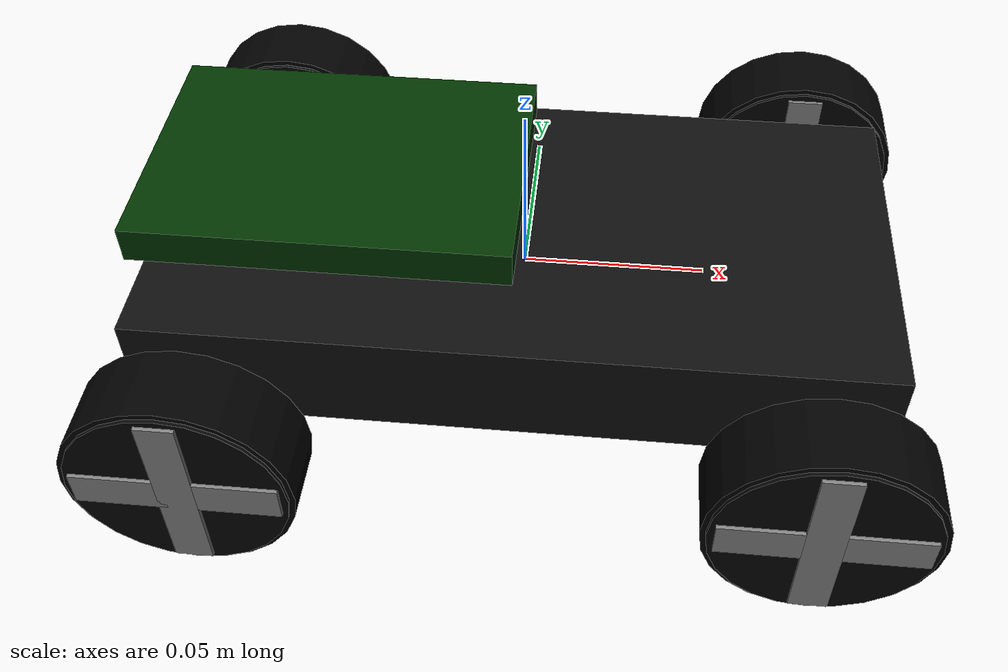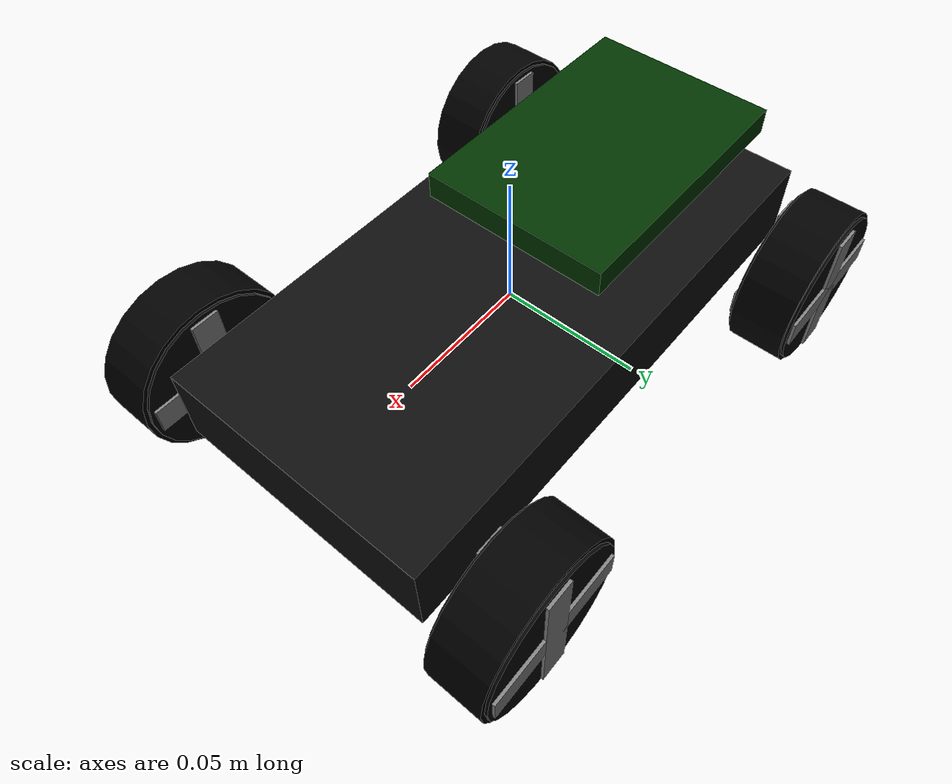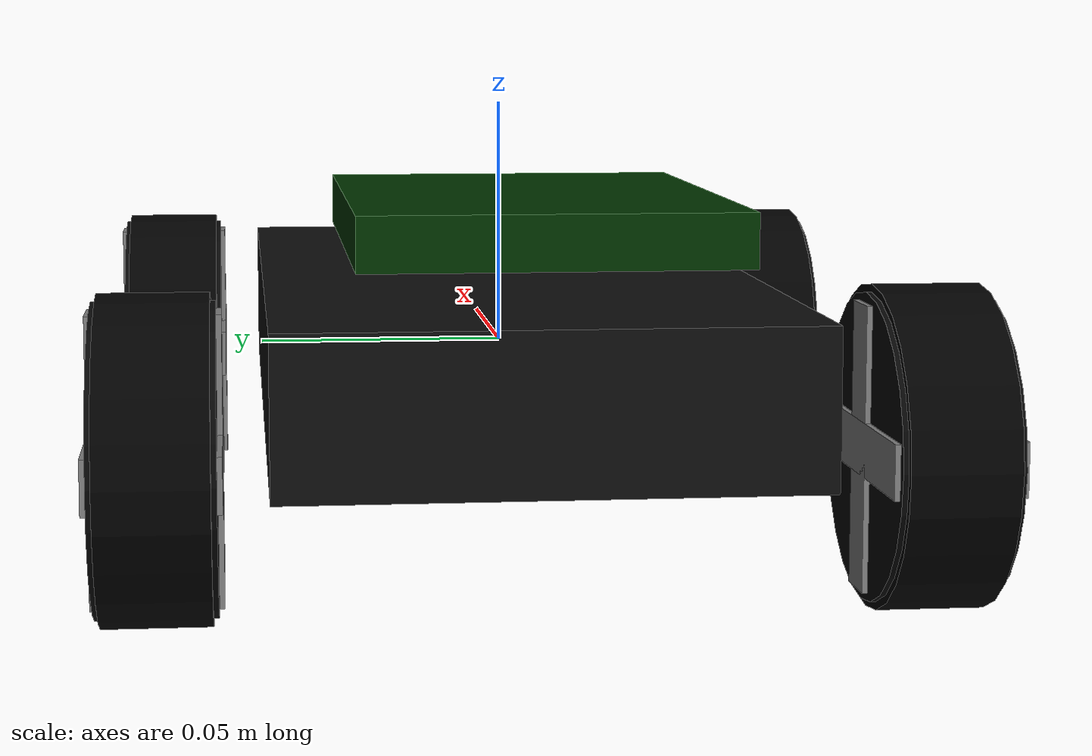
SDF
<?xml version="1.0" ?>
<sdf version="1.7">
<model name='freenove_4wd'>
  <pose>0 0 0 0 0 0</pose>

  <link name='base_link'>
    <inertial>
        <mass>0.2</mass>
        <inertia>
          <ixx>0.01</ixx>
          <iyy>0.01</iyy>
          <izz>0.01</izz>
        </inertia>
      </inertial>

    <visual name='chassis_visual'>
        <pose>0 0 0 0 0 0</pose>
        <geometry>
          <box>
            <size>0.2 0.1 0.03</size>
          </box>
        </geometry>
        <material>
          <diffuse>0.05 0.05 0.05 1</diffuse>
          <specular>0.8 0.8 0.8 1</specular>
        </material>
      </visual>

      <collision name='chassis_collision'>
        <pose>0 0 0 0 0 0</pose>
        <geometry>
          <box>
            <size>0.2 0.1 0.03</size>
          </box>
        </geometry>
      </collision>

    <visual name='computer_visual'>
        <pose>-0.05 0 0.03 0 0 0</pose>
        <geometry>
          <box>
            <size>0.1 0.07 0.01</size>
          </box>
        </geometry>
        <material>
          <diffuse>0 0.2 0 1</diffuse>
          <specular>0.8 0.8 0.8 1</specular>
        </material>
      </visual>

      <collision name='computer_collision'>
        <pose>-0.05 0 0.03 0 0 0</pose>
        <geometry>
          <box>
            <size>0.1 0.07 0.01</size>
          </box>
        </geometry>
      </collision>

  </link>
  <link name="front_left">
    <pose>0.08 0.07 -0.01 -1.5707 0 0</pose>
    <inertial>
        <mass>0.005</mass>
        <inertia>
          <ixx>0.0001</ixx>
          <iyy>0.0001</iyy>
          <izz>0.0001</izz>
        </inertia>
      </inertial>

    <collision name="collision">
      <geometry>
        <cylinder>
          <radius>0.03</radius>
          <length>0.02</length>
        </cylinder>
      </geometry>
    </collision>

    <visual name="tire">
      <geometry>
        <cylinder>
          <radius>0.03</radius>
          <length>0.02</length>
        </cylinder>
      </geometry>
      <material>
        <diffuse>0 0 0 1</diffuse>
        <specular>0.2 0.2 0.2 1</specular>
      </material>
    </visual>

    <visual name="wheel">
      <geometry>
        <cylinder>
          <radius>0.028499999999999998</radius>
          <length>0.022</length>
        </cylinder>
      </geometry>
      <material>
        <diffuse>0.02 0.02 0.02 1</diffuse>
        <specular>0.8 0.8 0.8 1</specular>
      </material>
    </visual>

    <visual name="wheel_line">
      <geometry>
        <box>
          <size>0.053 0.01 0.024</size>
        </box>
      </geometry>
      <material>
        <diffuse>0.5 0.5 0.5 1</diffuse>
        <specular>0.8 0.8 0.8 1</specular>
      </material>
    </visual>

    <visual name="wheel_line2">
      <geometry>
        <box>
          <size>0.01 0.053 0.024</size>
        </box>
      </geometry>
      <material>
        <diffuse>0.5 0.5 0.5 1</diffuse>
        <specular>0.8 0.8 0.8 1</specular>
      </material>
    </visual>

  </link>

  <joint type="revolute" name="front_left_joint">
    <child>front_left</child>
    <parent>base_link</parent>
    <axis>
      <xyz>0 0 1</xyz>
      <dynamics>
        <friction>0.01</friction>
        <damping>0.01</damping>
      </dynamics>
    </axis>
  </joint>

  <link name="front_right">
    <pose>0.08 -0.07 -0.01 -1.5707 0 0</pose>
    <inertial>
        <mass>0.005</mass>
        <inertia>
          <ixx>0.0001</ixx>
          <iyy>0.0001</iyy>
          <izz>0.0001</izz>
        </inertia>
      </inertial>

    <collision name="collision">
      <geometry>
        <cylinder>
          <radius>0.03</radius>
          <length>0.02</length>
        </cylinder>
      </geometry>
    </collision>

    <visual name="tire">
      <geometry>
        <cylinder>
          <radius>0.03</radius>
          <length>0.02</length>
        </cylinder>
      </geometry>
      <material>
        <diffuse>0 0 0 1</diffuse>
        <specular>0.2 0.2 0.2 1</specular>
      </material>
    </visual>

    <visual name="wheel">
      <geometry>
        <cylinder>
          <radius>0.028499999999999998</radius>
          <length>0.022</length>
        </cylinder>
      </geometry>
      <material>
        <diffuse>0.02 0.02 0.02 1</diffuse>
        <specular>0.8 0.8 0.8 1</specular>
      </material>
    </visual>

    <visual name="wheel_line">
      <geometry>
        <box>
          <size>0.053 0.01 0.024</size>
        </box>
      </geometry>
      <material>
        <diffuse>0.5 0.5 0.5 1</diffuse>
        <specular>0.8 0.8 0.8 1</specular>
      </material>
    </visual>

    <visual name="wheel_line2">
      <geometry>
        <box>
          <size>0.01 0.053 0.024</size>
        </box>
      </geometry>
      <material>
        <diffuse>0.5 0.5 0.5 1</diffuse>
        <specular>0.8 0.8 0.8 1</specular>
      </material>
    </visual>

  </link>

  <joint type="revolute" name="front_right_joint">
    <child>front_right</child>
    <parent>base_link</parent>
    <axis>
      <xyz>0 0 1</xyz>
      <dynamics>
        <friction>0.01</friction>
        <damping>0.01</damping>
      </dynamics>
    </axis>
  </joint>

  <link name="rear_left">
    <pose>-0.08 0.07 -0.01 -1.5707 0 0</pose>
    <inertial>
        <mass>0.005</mass>
        <inertia>
          <ixx>0.0001</ixx>
          <iyy>0.0001</iyy>
          <izz>0.0001</izz>
        </inertia>
      </inertial>

    <collision name="collision">
      <geometry>
        <cylinder>
          <radius>0.03</radius>
          <length>0.02</length>
        </cylinder>
      </geometry>
    </collision>

    <visual name="tire">
      <geometry>
        <cylinder>
          <radius>0.03</radius>
          <length>0.02</length>
        </cylinder>
      </geometry>
      <material>
        <diffuse>0 0 0 1</diffuse>
        <specular>0.2 0.2 0.2 1</specular>
      </material>
    </visual>

    <visual name="wheel">
      <geometry>
        <cylinder>
          <radius>0.028499999999999998</radius>
          <length>0.022</length>
        </cylinder>
      </geometry>
      <material>
        <diffuse>0.02 0.02 0.02 1</diffuse>
        <specular>0.8 0.8 0.8 1</specular>
      </material>
    </visual>

    <visual name="wheel_line">
      <geometry>
        <box>
          <size>0.053 0.01 0.024</size>
        </box>
      </geometry>
      <material>
        <diffuse>0.5 0.5 0.5 1</diffuse>
        <specular>0.8 0.8 0.8 1</specular>
      </material>
    </visual>

    <visual name="wheel_line2">
      <geometry>
        <box>
          <size>0.01 0.053 0.024</size>
        </box>
      </geometry>
      <material>
        <diffuse>0.5 0.5 0.5 1</diffuse>
        <specular>0.8 0.8 0.8 1</specular>
      </material>
    </visual>

  </link>

  <joint type="revolute" name="rear_left_joint">
    <child>rear_left</child>
    <parent>base_link</parent>
    <axis>
      <xyz>0 0 1</xyz>
      <dynamics>
        <friction>0.01</friction>
        <damping>0.01</damping>
      </dynamics>
    </axis>
  </joint>

  <link name="rear_right">
    <pose>-0.08 -0.07 -0.01 -1.5707 0 0</pose>
    <inertial>
        <mass>0.005</mass>
        <inertia>
          <ixx>0.0001</ixx>
          <iyy>0.0001</iyy>
          <izz>0.0001</izz>
        </inertia>
      </inertial>

    <collision name="collision">
      <geometry>
        <cylinder>
          <radius>0.03</radius>
          <length>0.02</length>
        </cylinder>
      </geometry>
    </collision>

    <visual name="tire">
      <geometry>
        <cylinder>
          <radius>0.03</radius>
          <length>0.02</length>
        </cylinder>
      </geometry>
      <material>
        <diffuse>0 0 0 1</diffuse>
        <specular>0.2 0.2 0.2 1</specular>
      </material>
    </visual>

    <visual name="wheel">
      <geometry>
        <cylinder>
          <radius>0.028499999999999998</radius>
          <length>0.022</length>
        </cylinder>
      </geometry>
      <material>
        <diffuse>0.02 0.02 0.02 1</diffuse>
        <specular>0.8 0.8 0.8 1</specular>
      </material>
    </visual>

    <visual name="wheel_line">
      <geometry>
        <box>
          <size>0.053 0.01 0.024</size>
        </box>
      </geometry>
      <material>
        <diffuse>0.5 0.5 0.5 1</diffuse>
        <specular>0.8 0.8 0.8 1</specular>
      </material>
    </visual>

    <visual name="wheel_line2">
      <geometry>
        <box>
          <size>0.01 0.053 0.024</size>
        </box>
      </geometry>
      <material>
        <diffuse>0.5 0.5 0.5 1</diffuse>
        <specular>0.8 0.8 0.8 1</specular>
      </material>
    </visual>

  </link>

  <joint type="revolute" name="rear_right_joint">
    <child>rear_right</child>
    <parent>base_link</parent>
    <axis>
      <xyz>0 0 1</xyz>
      <dynamics>
        <friction>0.01</friction>
        <damping>0.01</damping>
      </dynamics>
    </axis>
  </joint>

</model>

</sdf>
<!-- vim: set et fenc=utf-8 ff=unix sts=0 sw=2 ts=2 : -->
